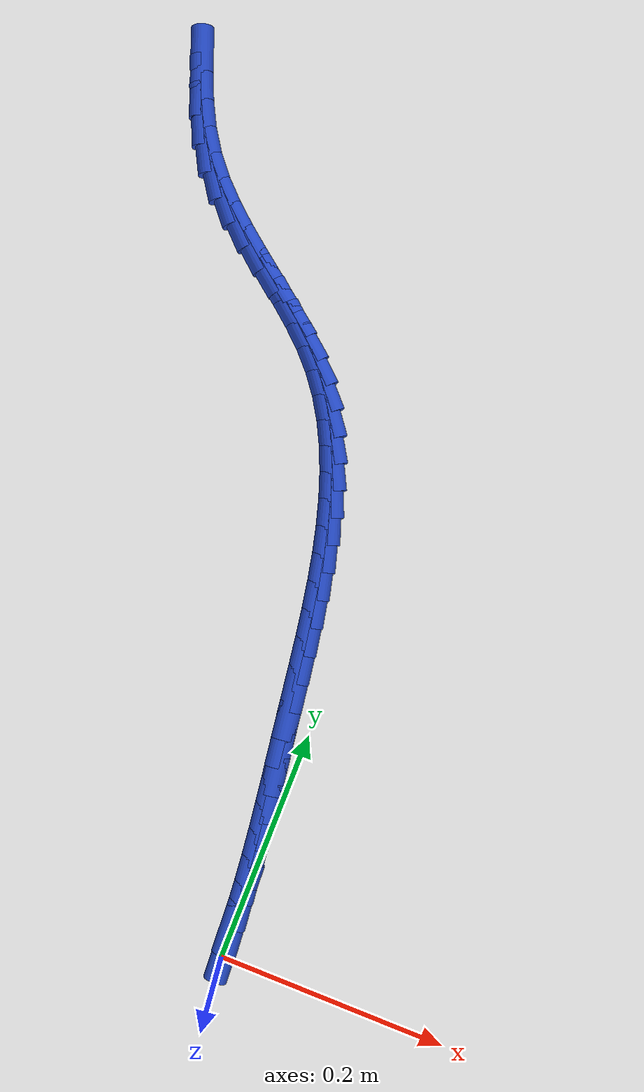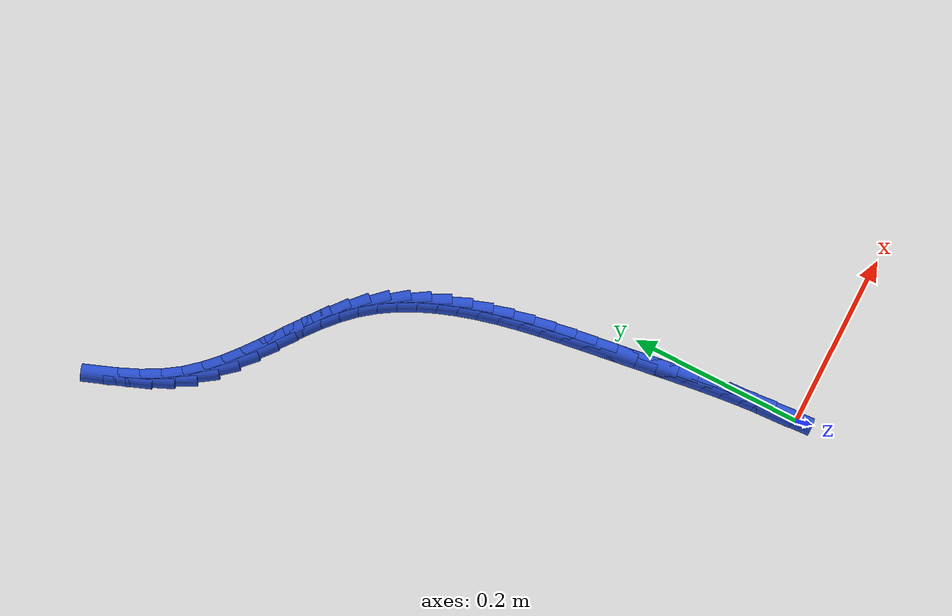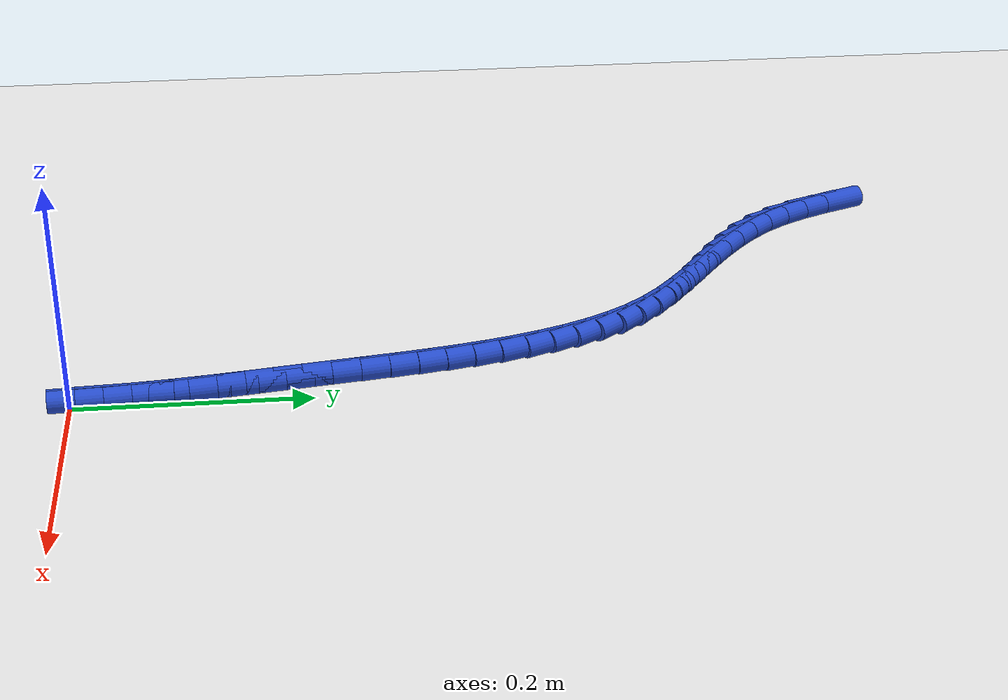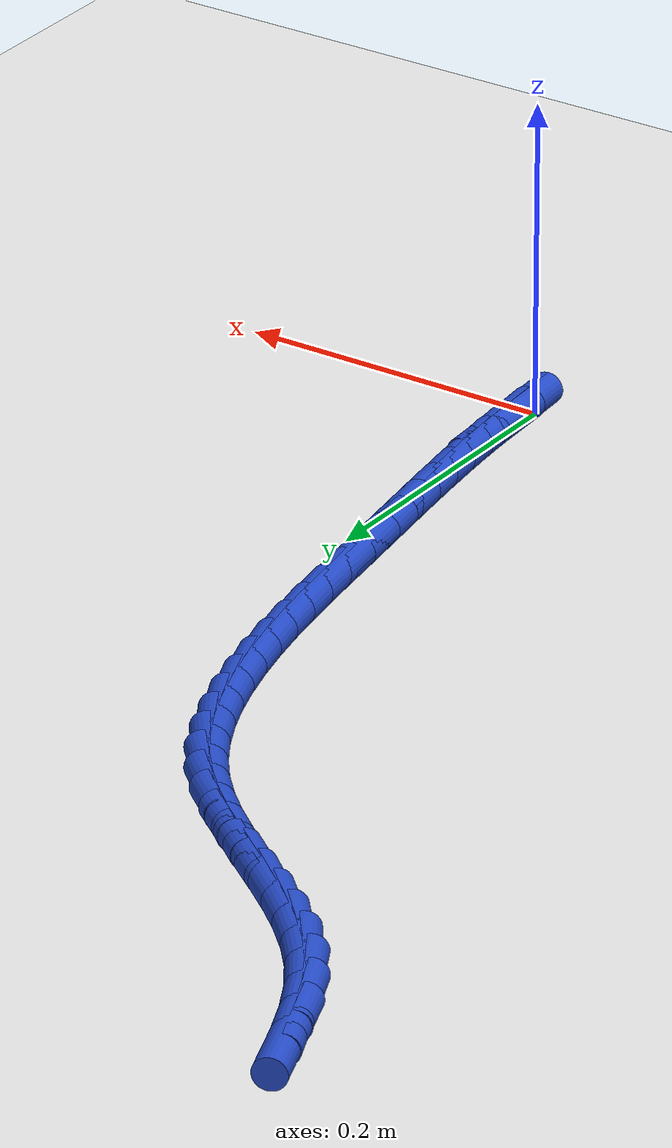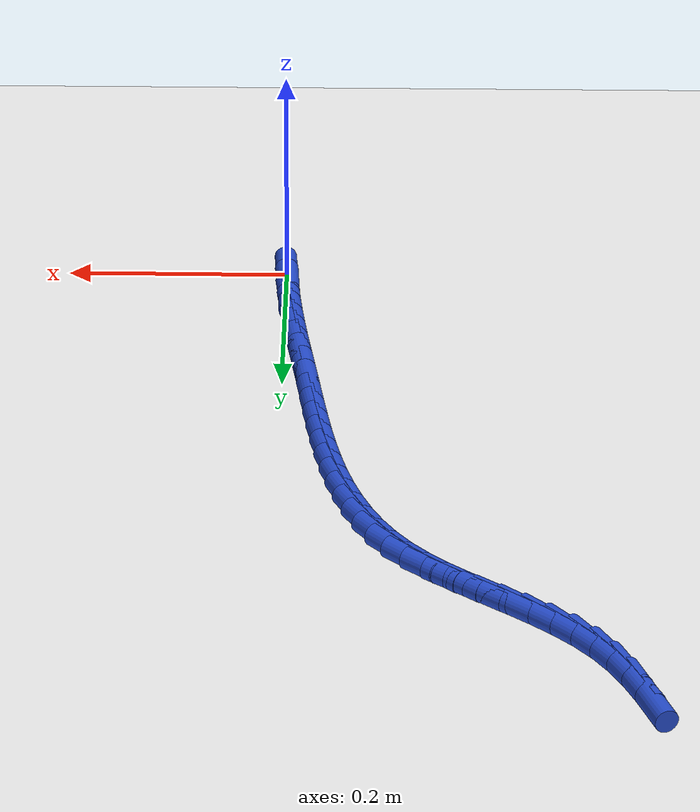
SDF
<sdf version="1.6">
 <world name="default">
  <model name="ground_plane">
   <static>1</static>
   <link name="link">
    <collision name="collision">
     <geometry><plane><normal>0 0 1</normal><size>100 100</size></plane></geometry>
     <surface><friction><ode><mu>100</mu><mu2>50</mu2></ode></friction></surface>
    </collision>
    <visual name="visual">
     <cast_shadows>0</cast_shadows>
     <geometry><plane><normal>0 0 1</normal><size>100 100</size></plane></geometry>
     <material>
      <script><uri>file://media/materials/scripts/gazebo.material</uri><name>Gazebo/WhiteGlow</name></script>
     </material>
    </visual>
   </link>
  </model>
  <model name="line">
   <link name="link_1">
    <pose>-0.0007996154583783103 0.022752407425781863 0.01 0 1.57 -1.5092630340679354</pose>
    <collision name="collision">
     <geometry><cylinder><radius>0.01</radius><length>0.08</length></cylinder></geometry>
    </collision>
    <visual name="visual">
     <material>
      <script><name>Gazebo/Blue</name><uri>file://media/materials/scripts/gazebo.material</uri></script>
     </material>
     <geometry><cylinder><radius>0.01</radius><length>0.08</length></cylinder></geometry>
    </visual>
   </link>
   <link name="link_2">
    <pose>-0.002196849538418594 0.045430702415152874 0.01 0 1.57 -1.4864036266909855</pose>
    <collision name="collision">
     <geometry><cylinder><radius>0.01</radius><length>0.08</length></cylinder></geometry>
    </collision>
    <visual name="visual">
     <material>
      <script><name>Gazebo/Blue</name><uri>file://media/materials/scripts/gazebo.material</uri></script>
     </material>
     <geometry><cylinder><radius>0.01</radius><length>0.08</length></cylinder></geometry>
    </visual>
   </link>
   <link name="link_3">
    <pose>-0.00411280927286085 0.06807968746805257 0.01 0 1.57 -1.4672261902516774</pose>
    <collision name="collision">
     <geometry><cylinder><radius>0.01</radius><length>0.08</length></cylinder></geometry>
    </collision>
    <visual name="visual">
     <material>
      <script><name>Gazebo/Blue</name><uri>file://media/materials/scripts/gazebo.material</uri></script>
     </material>
     <geometry><cylinder><radius>0.01</radius><length>0.08</length></cylinder></geometry>
    </visual>
   </link>
   <link name="link_4">
    <pose>-0.0064686016944450675 0.09074416508442043 0.01 0 1.57 -1.4518116624976236</pose>
    <collision name="collision">
     <geometry><cylinder><radius>0.01</radius><length>0.08</length></cylinder></geometry>
    </collision>
    <visual name="visual">
     <material>
      <script><name>Gazebo/Blue</name><uri>file://media/materials/scripts/gazebo.material</uri></script>
     </material>
     <geometry><cylinder><radius>0.01</radius><length>0.08</length></cylinder></geometry>
    </visual>
   </link>
   <link name="link_5">
    <pose>-0.009185333835911245 0.11346893776419592 0.01 0 1.57 -1.440190740140251</pose>
    <collision name="collision">
     <geometry><cylinder><radius>0.01</radius><length>0.08</length></cylinder></geometry>
    </collision>
    <visual name="visual">
     <material>
      <script><name>Gazebo/Blue</name><uri>file://media/materials/scripts/gazebo.material</uri></script>
     </material>
     <geometry><cylinder><radius>0.01</radius><length>0.08</length></cylinder></geometry>
    </visual>
   </link>
   <link name="link_6">
    <pose>-0.012184112729999379 0.13629880800731858 0.01 0 1.57 -1.4323506813139588</pose>
    <collision name="collision">
     <geometry><cylinder><radius>0.01</radius><length>0.08</length></cylinder></geometry>
    </collision>
    <visual name="visual">
     <material>
      <script><name>Gazebo/Blue</name><uri>file://media/materials/scripts/gazebo.material</uri></script>
     </material>
     <geometry><cylinder><radius>0.01</radius><length>0.08</length></cylinder></geometry>
    </visual>
   </link>
   <link name="link_7">
    <pose>-0.01538604540944946 0.1592785783137279 0.01 0 1.57 -1.4282415661234653</pose>
    <collision name="collision">
     <geometry><cylinder><radius>0.01</radius><length>0.08</length></cylinder></geometry>
    </collision>
    <visual name="visual">
     <material>
      <script><name>Gazebo/Blue</name><uri>file://media/materials/scripts/gazebo.material</uri></script>
     </material>
     <geometry><cylinder><radius>0.01</radius><length>0.08</length></cylinder></geometry>
    </visual>
   </link>
   <link name="link_8">
    <pose>-0.018712238907001487 0.18245305118336336 0.01 0 1.57 -1.4277816055976553</pose>
    <collision name="collision">
     <geometry><cylinder><radius>0.01</radius><length>0.08</length></cylinder></geometry>
    </collision>
    <visual name="visual">
     <material>
      <script><name>Gazebo/Blue</name><uri>file://media/materials/scripts/gazebo.material</uri></script>
     </material>
     <geometry><cylinder><radius>0.01</radius><length>0.08</length></cylinder></geometry>
    </visual>
   </link>
   <link name="link_9">
    <pose>-0.022083800255395455 0.20586702911616445 0.01 0 1.57 -1.430461245277666</pose>
    <collision name="collision">
     <geometry><cylinder><radius>0.01</radius><length>0.08</length></cylinder></geometry>
    </collision>
    <visual name="visual">
     <material>
      <script><name>Gazebo/Blue</name><uri>file://media/materials/scripts/gazebo.material</uri></script>
     </material>
     <geometry><cylinder><radius>0.01</radius><length>0.08</length></cylinder></geometry>
    </visual>
   </link>
   <link name="link_10">
    <pose>-0.025430540108676923 0.22955847361248613 0.01 0 1.57 -1.4305754489350662</pose>
    <collision name="collision">
     <geometry><cylinder><radius>0.01</radius><length>0.08</length></cylinder></geometry>
    </collision>
    <visual name="visual">
     <material>
      <script><name>Gazebo/Blue</name><uri>file://media/materials/scripts/gazebo.material</uri></script>
     </material>
     <geometry><cylinder><radius>0.01</radius><length>0.08</length></cylinder></geometry>
    </visual>
   </link>
   <link name="link_11">
    <pose>-0.028805383698102312 0.25346857877644996 0.01 0 1.57 -1.4240507119331391</pose>
    <collision name="collision">
     <geometry><cylinder><radius>0.01</radius><length>0.08</length></cylinder></geometry>
    </collision>
    <visual name="visual">
     <material>
      <script><name>Gazebo/Blue</name><uri>file://media/materials/scripts/gazebo.material</uri></script>
     </material>
     <geometry><cylinder><radius>0.01</radius><length>0.08</length></cylinder></geometry>
    </visual>
   </link>
   <link name="link_12">
    <pose>-0.03235251692392895 0.27746680831665654 0.01 0 1.57 -1.4107939568309824</pose>
    <collision name="collision">
     <geometry><cylinder><radius>0.01</radius><length>0.08</length></cylinder></geometry>
    </collision>
    <visual name="visual">
     <material>
      <script><name>Gazebo/Blue</name><uri>file://media/materials/scripts/gazebo.material</uri></script>
     </material>
     <geometry><cylinder><radius>0.01</radius><length>0.08</length></cylinder></geometry>
    </visual>
   </link>
   <link name="link_13">
    <pose>-0.03621827897254508 0.30142093347037624 0.01 0 1.57 -1.3906377145496933</pose>
    <collision name="collision">
     <geometry><cylinder><radius>0.01</radius><length>0.08</length></cylinder></geometry>
    </collision>
    <visual name="visual">
     <material>
      <script><name>Gazebo/Blue</name><uri>file://media/materials/scripts/gazebo.material</uri></script>
     </material>
     <geometry><cylinder><radius>0.01</radius><length>0.08</length></cylinder></geometry>
    </visual>
   </link>
   <link name="link_14">
    <pose>-0.04054900903033896 0.3251987254748795 0.01 0 1.57 -1.3632533144146899</pose>
    <collision name="collision">
     <geometry><cylinder><radius>0.01</radius><length>0.08</length></cylinder></geometry>
    </collision>
    <visual name="visual">
     <material>
      <script><name>Gazebo/Blue</name><uri>file://media/materials/scripts/gazebo.material</uri></script>
     </material>
     <geometry><cylinder><radius>0.01</radius><length>0.08</length></cylinder></geometry>
    </visual>
   </link>
   <link name="link_15">
    <pose>-0.045491046283698815 0.3486679555674368 0.01 0 1.57 -1.3281660572148266</pose>
    <collision name="collision">
     <geometry><cylinder><radius>0.01</radius><length>0.08</length></cylinder></geometry>
    </collision>
    <visual name="visual">
     <material>
      <script><name>Gazebo/Blue</name><uri>file://media/materials/scripts/gazebo.material</uri></script>
     </material>
     <geometry><cylinder><radius>0.01</radius><length>0.08</length></cylinder></geometry>
    </visual>
   </link>
   <link name="link_16">
    <pose>-0.05119072991901294 0.37169639498531865 0.01 0 1.57 -1.2847803837345702</pose>
    <collision name="collision">
     <geometry><cylinder><radius>0.01</radius><length>0.08</length></cylinder></geometry>
    </collision>
    <visual name="visual">
     <material>
      <script><name>Gazebo/Blue</name><uri>file://media/materials/scripts/gazebo.material</uri></script>
     </material>
     <geometry><cylinder><radius>0.01</radius><length>0.08</length></cylinder></geometry>
    </visual>
   </link>
   <link name="link_17">
    <pose>-0.057794399122669565 0.39415181496579543 0.01 0 1.57 -1.2324254217158606</pose>
    <collision name="collision">
     <geometry><cylinder><radius>0.01</radius><length>0.08</length></cylinder></geometry>
    </collision>
    <visual name="visual">
     <material>
      <script><name>Gazebo/Blue</name><uri>file://media/materials/scripts/gazebo.material</uri></script>
     </material>
     <geometry><cylinder><radius>0.01</radius><length>0.08</length></cylinder></geometry>
    </visual>
   </link>
   <link name="link_18">
    <pose>-0.06544839308105695 0.4159019867461378 0.01 0 1.57 -1.1704348400482292</pose>
    <collision name="collision">
     <geometry><cylinder><radius>0.01</radius><length>0.08</length></cylinder></geometry>
    </collision>
    <visual name="visual">
     <material>
      <script><name>Gazebo/Blue</name><uri>file://media/materials/scripts/gazebo.material</uri></script>
     </material>
     <geometry><cylinder><radius>0.01</radius><length>0.08</length></cylinder></geometry>
    </visual>
   </link>
   <link name="link_19">
    <pose>-0.07429905098056333 0.4368146815636159 0.01 0 1.57 -1.0982764233818103</pose>
    <collision name="collision">
     <geometry><cylinder><radius>0.01</radius><length>0.08</length></cylinder></geometry>
    </collision>
    <visual name="visual">
     <material>
      <script><name>Gazebo/Blue</name><uri>file://media/materials/scripts/gazebo.material</uri></script>
     </material>
     <geometry><cylinder><radius>0.01</radius><length>0.08</length></cylinder></geometry>
    </visual>
   </link>
   <link name="link_20">
    <pose>-0.08449271200757699 0.45675767065550055 0.01 0 1.57 -1.0157411969104022</pose>
    <collision name="collision">
     <geometry><cylinder><radius>0.01</radius><length>0.08</length></cylinder></geometry>
    </collision>
    <visual name="visual">
     <material>
      <script><name>Gazebo/Blue</name><uri>file://media/materials/scripts/gazebo.material</uri></script>
     </material>
     <geometry><cylinder><radius>0.01</radius><length>0.08</length></cylinder></geometry>
    </visual>
   </link>
   <link name="link_21">
    <pose>-0.09617571534848621 0.47559872525906205 0.01 0 1.57 -0.9231817204876047</pose>
    <collision name="collision">
     <geometry><cylinder><radius>0.01</radius><length>0.08</length></cylinder></geometry>
    </collision>
    <visual name="visual">
     <material>
      <script><name>Gazebo/Blue</name><uri>file://media/materials/scripts/gazebo.material</uri></script>
     </material>
     <geometry><cylinder><radius>0.01</radius><length>0.08</length></cylinder></geometry>
    </visual>
   </link>
   <link name="link_22">
    <pose>-0.10949440018967913 0.4932056166115707 0.01 0 1.57 -0.8243447026275936</pose>
    <collision name="collision">
     <geometry><cylinder><radius>0.01</radius><length>0.08</length></cylinder></geometry>
    </collision>
    <visual name="visual">
     <material>
      <script><name>Gazebo/Blue</name><uri>file://media/materials/scripts/gazebo.material</uri></script>
     </material>
     <geometry><cylinder><radius>0.01</radius><length>0.08</length></cylinder></geometry>
    </visual>
   </link>
   <link name="link_23">
    <pose>-0.12455230791968612 0.5094846054683013 0.01 0 1.57 -0.7420834030354317</pose>
    <collision name="collision">
     <geometry><cylinder><radius>0.01</radius><length>0.08</length></cylinder></geometry>
    </collision>
    <visual name="visual">
     <material>
      <script><name>Gazebo/Blue</name><uri>file://media/materials/scripts/gazebo.material</uri></script>
     </material>
     <geometry><cylinder><radius>0.01</radius><length>0.08</length></cylinder></geometry>
    </visual>
   </link>
   <link name="link_24">
    <pose>-0.14110106268531142 0.5246584437520476 0.01 0 1.57 -0.6868104738537814</pose>
    <collision name="collision">
     <geometry><cylinder><radius>0.01</radius><length>0.08</length></cylinder></geometry>
    </collision>
    <visual name="visual">
     <material>
      <script><name>Gazebo/Blue</name><uri>file://media/materials/scripts/gazebo.material</uri></script>
     </material>
     <geometry><cylinder><radius>0.01</radius><length>0.08</length></cylinder></geometry>
    </visual>
   </link>
   <link name="link_25">
    <pose>-0.15871945764540837 0.5391053161825077 0.01 0 1.57 -0.6573678868618982</pose>
    <collision name="collision">
     <geometry><cylinder><radius>0.01</radius><length>0.08</length></cylinder></geometry>
    </collision>
    <visual name="visual">
     <material>
      <script><name>Gazebo/Blue</name><uri>file://media/materials/scripts/gazebo.material</uri></script>
     </material>
     <geometry><cylinder><radius>0.01</radius><length>0.08</length></cylinder></geometry>
    </visual>
   </link>
   <link name="link_26">
    <pose>-0.17698508938257662 0.5532044836011789 0.01 0 1.57 -0.6525379172176473</pose>
    <collision name="collision">
     <geometry><cylinder><radius>0.01</radius><length>0.08</length></cylinder></geometry>
    </collision>
    <visual name="visual">
     <material>
      <script><name>Gazebo/Blue</name><uri>file://media/materials/scripts/gazebo.material</uri></script>
     </material>
     <geometry><cylinder><radius>0.01</radius><length>0.08</length></cylinder></geometry>
    </visual>
   </link>
   <link name="link_27">
    <pose>-0.19547555447941573 0.5673352068495588 0.01 0 1.57 -0.6716407811316856</pose>
    <collision name="collision">
     <geometry><cylinder><radius>0.01</radius><length>0.08</length></cylinder></geometry>
    </collision>
    <visual name="visual">
     <material>
      <script><name>Gazebo/Blue</name><uri>file://media/materials/scripts/gazebo.material</uri></script>
     </material>
     <geometry><cylinder><radius>0.01</radius><length>0.08</length></cylinder></geometry>
    </visual>
   </link>
   <link name="link_28">
    <pose>-0.21376844951852572 0.5818767467691455 0.01 0 1.57 -0.7145779483354731</pose>
    <collision name="collision">
     <geometry><cylinder><radius>0.01</radius><length>0.08</length></cylinder></geometry>
    </collision>
    <visual name="visual">
     <material>
      <script><name>Gazebo/Blue</name><uri>file://media/materials/scripts/gazebo.material</uri></script>
     </material>
     <geometry><cylinder><radius>0.01</radius><length>0.08</length></cylinder></geometry>
    </visual>
   </link>
   <link name="link_29">
    <pose>-0.23144137108250606 0.5972083642014361 0.01 0 1.57 -0.7814868336258474</pose>
    <collision name="collision">
     <geometry><cylinder><radius>0.01</radius><length>0.08</length></cylinder></geometry>
    </collision>
    <visual name="visual">
     <material>
      <script><name>Gazebo/Blue</name><uri>file://media/materials/scripts/gazebo.material</uri></script>
     </material>
     <geometry><cylinder><radius>0.01</radius><length>0.08</length></cylinder></geometry>
    </visual>
   </link>
   <link name="link_30">
    <pose>-0.24807191575395637 0.6137093199879282 0.01 0 1.57 -0.8720020968075067</pose>
    <collision name="collision">
     <geometry><cylinder><radius>0.01</radius><length>0.08</length></cylinder></geometry>
    </collision>
    <visual name="visual">
     <material>
      <script><name>Gazebo/Blue</name><uri>file://media/materials/scripts/gazebo.material</uri></script>
     </material>
     <geometry><cylinder><radius>0.01</radius><length>0.08</length></cylinder></geometry>
    </visual>
   </link>
   <link name="link_31">
    <pose>-0.2632376801154765 0.6317588749701195 0.01 0 1.57 -0.9832125202567297</pose>
    <collision name="collision">
     <geometry><cylinder><radius>0.01</radius><length>0.08</length></cylinder></geometry>
    </collision>
    <visual name="visual">
     <material>
      <script><name>Gazebo/Blue</name><uri>file://media/materials/scripts/gazebo.material</uri></script>
     </material>
     <geometry><cylinder><radius>0.01</radius><length>0.08</length></cylinder></geometry>
    </visual>
   </link>
   <link name="link_32">
    <pose>-0.2765323002653723 0.6517189117487473 0.01 0 1.57 -1.0881716636845455</pose>
    <collision name="collision">
     <geometry><cylinder><radius>0.01</radius><length>0.08</length></cylinder></geometry>
    </collision>
    <visual name="visual">
     <material>
      <script><name>Gazebo/Blue</name><uri>file://media/materials/scripts/gazebo.material</uri></script>
     </material>
     <geometry><cylinder><radius>0.01</radius><length>0.08</length></cylinder></geometry>
    </visual>
   </link>
   <link name="link_33">
    <pose>-0.2879522916452171 0.673514807586541 0.01 0 1.57 -1.1635313918204884</pose>
    <collision name="collision">
     <geometry><cylinder><radius>0.01</radius><length>0.08</length></cylinder></geometry>
    </collision>
    <visual name="visual">
     <material>
      <script><name>Gazebo/Blue</name><uri>file://media/materials/scripts/gazebo.material</uri></script>
     </material>
     <geometry><cylinder><radius>0.01</radius><length>0.08</length></cylinder></geometry>
    </visual>
   </link>
   <link name="link_34">
    <pose>-0.2979168771394939 0.696613951372469 0.01 0 1.57 -1.2118281838493508</pose>
    <collision name="collision">
     <geometry><cylinder><radius>0.01</radius><length>0.08</length></cylinder></geometry>
    </collision>
    <visual name="visual">
     <material>
      <script><name>Gazebo/Blue</name><uri>file://media/materials/scripts/gazebo.material</uri></script>
     </material>
     <geometry><cylinder><radius>0.01</radius><length>0.08</length></cylinder></geometry>
    </visual>
   </link>
   <link name="link_291">
    <pose>-0.0008151399293749731 0.02273973757589342 0.01 0 1.57 -1.5042311757557028</pose>
    <collision name="collision">
     <geometry><cylinder><radius>0.01</radius><length>0.08</length></cylinder></geometry>
    </collision>
    <visual name="visual">
     <material>
      <script><name>Gazebo/Blue</name><uri>file://media/materials/scripts/gazebo.material</uri></script>
     </material>
     <geometry><cylinder><radius>0.01</radius><length>0.08</length></cylinder></geometry>
    </visual>
   </link>
   <link name="link_292">
    <pose>-0.0023210453063921494 0.04532934361605097 0.01 0 1.57 -1.519636971145294</pose>
    <collision name="collision">
     <geometry><cylinder><radius>0.01</radius><length>0.08</length></cylinder></geometry>
    </collision>
    <visual name="visual">
     <material>
      <script><name>Gazebo/Blue</name><uri>file://media/materials/scripts/gazebo.material</uri></script>
     </material>
     <geometry><cylinder><radius>0.01</radius><length>0.08</length></cylinder></geometry>
    </visual>
   </link>
  </model>
 </world>
</sdf>
